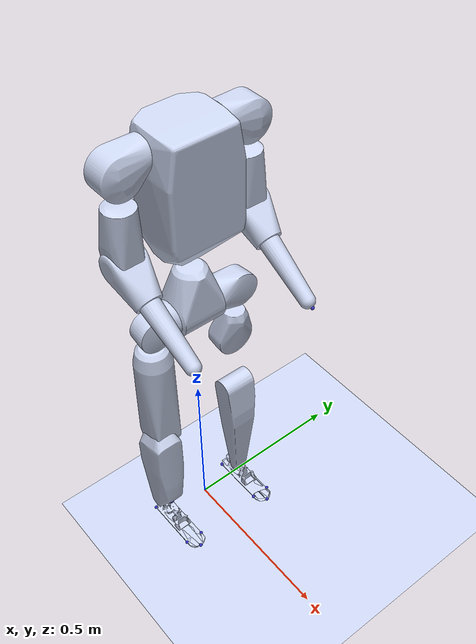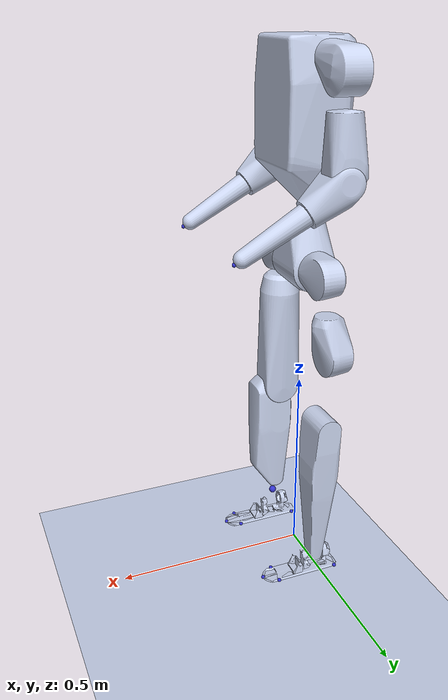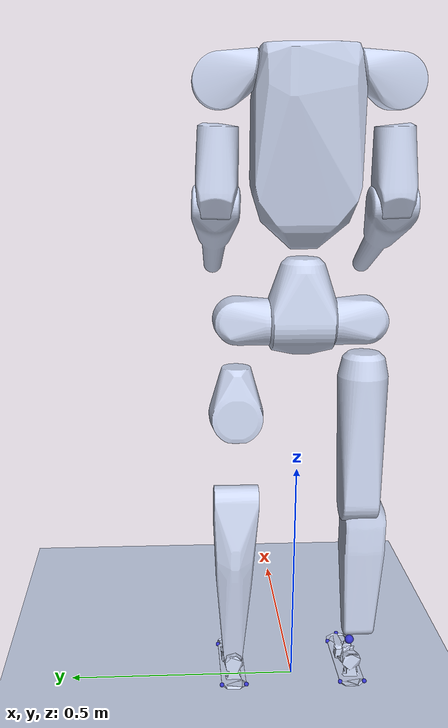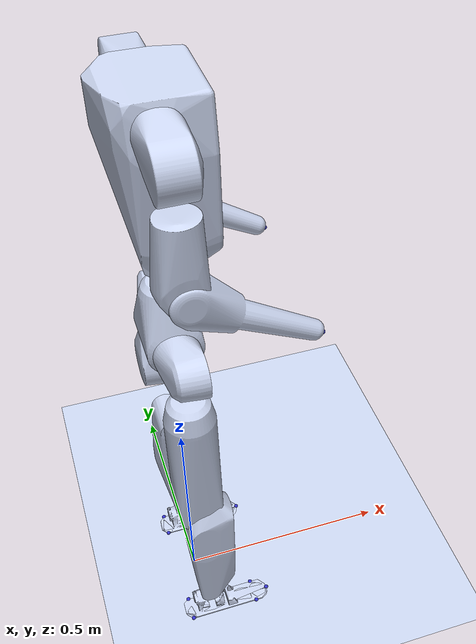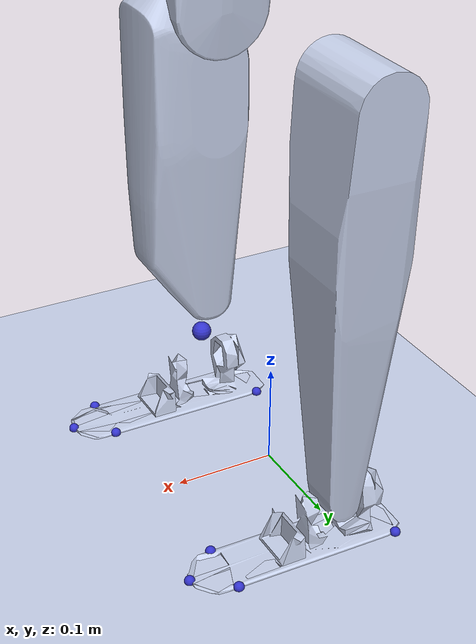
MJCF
<?xml version='1.0' encoding='utf-8'?>
<mujoco model="E2_23dof">
  <compiler angle="radian" meshdir="." autolimits="true" balanceinertia="true" />
  <default>
    <joint damping="0.001" armature="0.03" frictionloss="0.1" />
    <geom rgba="0.78 0.82 0.92 1" />
  </default>
  <asset>
    <texture name="ground_texture" type="2d" builtin="checker" rgb1=".2 .3 .4" rgb2=".1 .15 .2" width="512" height="512" />
    <material name="ground_material" texture="ground_texture" texrepeat="1 1" texuniform="true" reflectance="0" />
    <mesh name="base_link" file="simplified/base_link.STL" />
    <mesh name="l_leg_hip_pitch_link" file="simplified/l_leg_hip_pitch_link.STL" />
    <mesh name="l_leg_hip_yaw_link" file="simplified/l_leg_hip_yaw_link.STL" />
    <mesh name="l_leg_knee_link" file="simplified/l_leg_knee_link.STL" />
    <mesh name="l_leg_ankle_roll_link" file="simplified/l_leg_ankle_roll_link.STL" />
    <mesh name="r_leg_hip_pitch_link" file="simplified/r_leg_hip_pitch_link.STL" />
    <mesh name="r_leg_hip_yaw_link" file="simplified/r_leg_hip_yaw_link.STL" />
    <mesh name="r_leg_knee_link" file="simplified/r_leg_knee_link.STL" />
    <mesh name="r_leg_ankle_roll_link" file="simplified/r_leg_ankle_roll_link.STL" />
    <mesh name="waist_pitch_link" file="simplified/waist_pitch_link.STL" />
    <mesh name="l_arm_shoulder_pitch_link" file="simplified/l_arm_shoulder_pitch_link.STL" />
    <mesh name="l_arm_shoulder_yaw_link" file="simplified/l_arm_shoulder_yaw_link.STL" />
    <mesh name="l_arm_elbow_link" file="simplified/l_arm_elbow_link.STL" />
    <mesh name="r_arm_shoulder_pitch_link" file="simplified/r_arm_shoulder_pitch_link.STL" />
    <mesh name="r_arm_shoulder_yaw_link" file="simplified/r_arm_shoulder_yaw_link.STL" />
    <mesh name="r_arm_elbow_link" file="simplified/r_arm_elbow_link.STL" />
  </asset>
  <worldbody>
    <light directional="true" diffuse=".7 .7 .7" specular=".2 .2 .2" pos="0 0 4" dir="0 0 -1" />
    <geom name="ground" type="plane" size="0 0 1" pos="0 0 0" material="ground_material" condim="3" conaffinity="15" />
    <body name="base_link" pos="0 0 0.7595">
      <inertial pos="-0.00046609 -1.3058E-06 0.11394" mass="5.28864017" fullinertia="0.0182468 0.01506873 0.0079828 -2.1e-06 1.497e-05 9.27e-06" />
      <geom type="mesh" mesh="base_link" contype="1" conaffinity="1" group="2" name="base_link_geom" pos="0 0 0" euler="0 0 0" />
      <freejoint name="root" />
      <body name="l_leg_hip_pitch_link" pos="-0.00047114 0.06165 0.064">
        <inertial pos="0.0057148 0.064627 -2.5541E-05" mass="1.3773579" fullinertia="0.00163416 0.00114094 0.00147983 4.164e-05 -5.2e-07 -2.6e-07" />
        <geom type="mesh" mesh="l_leg_hip_pitch_link" contype="1" conaffinity="1" group="2" name="l_leg_hip_pitch_link_geom" pos="0 0 0" euler="0 0 0" />
        <joint name="l_leg_hip_pitch_joint" type="hinge" axis="0 1 0" range="-2.3562 3.1416" />
        <body name="l_leg_hip_roll_link" pos="0.004 0.070612 0.0003284">
          <inertial pos="0.012068 0.00018298 -0.046409" mass="0.26525549" fullinertia="0.00031798 0.00039374 0.00028296 7.9e-07 0.00011439 1.2e-07" />
          <joint name="l_leg_hip_roll_joint" type="hinge" axis="1 0 0" range="-0.349 2.9671" />
          <body name="l_leg_hip_yaw_link" pos="-0.004 8.7975E-05 -0.076112">
            <inertial pos="0.0015978 4.5174E-05 -0.17547" mass="3.57683738" fullinertia="0.06583596 0.06641946 0.00357311 4.16e-06 -0.0001477 3.05e-05" />
            <geom type="mesh" mesh="l_leg_hip_yaw_link" contype="1" conaffinity="1" group="2" name="l_leg_hip_yaw_link_geom" pos="0 0 0" euler="0 0 0" />
            <joint name="l_leg_hip_yaw_joint" type="hinge" axis="0 0 1" range="-4.7124 4.7124" />
            <body name="l_leg_knee_link" pos="0 -0.00099998 -0.3155">
              <inertial pos="-0.00010582 0.003327 -0.13825" mass="2.28601337" fullinertia="0.01653896 0.01597839 0.00202898 4.1e-06 -0.00062564 0.00027374" />
              <geom type="mesh" mesh="l_leg_knee_link" contype="1" conaffinity="1" group="2" name="l_leg_knee_link_geom" pos="0 0 0" euler="0 0 0" />
              <joint name="l_leg_knee_joint" type="hinge" axis="0 1 0" range="0 2.7925" />
              <body name="l_leg_ankle_pitch_link" pos="0.008 0.0025 -0.39">
                <inertial pos="0.0010073 1.1822E-05 -0.0029683" mass="0.12719236" fullinertia="1.176e-05 2.401e-05 1.965e-05 0 3.8e-07 0" />
                <joint name="l_leg_ankle_pitch_joint" type="hinge" axis="0 1 0" range="-1.0472 0.4363" />
                <body name="l_leg_ankle_roll_link" pos="0.0035 0 0">
                  <inertial pos="0.018153 2.0402E-09 -0.028716" mass="1.08809345" fullinertia="0.00037285 0.00205606 0.00212484 0 -8.271e-05 0" />
                  <geom type="mesh" mesh="l_leg_ankle_roll_link" contype="1" conaffinity="1" group="2" name="l_leg_ankle_roll_link_geom" pos="0 0 0" euler="0 0 0" />
                  <joint name="l_leg_ankle_roll_joint" type="hinge" axis="1 0 0" range="-0.3491 0.3491" />
                  <body name="l_foot_sphere_1_link" pos="-0.055 0.0275 -0.041">
                    <inertial pos="0 0 0" mass="0.001" fullinertia="1e-07 1e-07 1e-07 0 0 0" />
                    <geom type="sphere" size="0.005" rgba="0.2 0.2 0.8 1" contype="0" conaffinity="0" density="0" group="1" name="l_foot_sphere_1_link_geom" pos="0 0 0" euler="0 0 0" />
                  </body>
                  <body name="l_foot_sphere_2_link" pos="-0.055 -0.0275 -0.041">
                    <inertial pos="0 0 0" mass="0.001" fullinertia="1e-07 1e-07 1e-07 0 0 0" />
                    <geom type="sphere" size="0.005" rgba="0.2 0.2 0.8 1" contype="0" conaffinity="0" density="0" group="1" name="l_foot_sphere_2_link_geom" pos="0 0 0" euler="0 0 0" />
                  </body>
                  <body name="l_foot_sphere_3_link" pos="0.11 0.0275 -0.041">
                    <inertial pos="0 0 0" mass="0.001" fullinertia="1e-07 1e-07 1e-07 0 0 0" />
                    <geom type="sphere" size="0.005" rgba="0.2 0.2 0.8 1" contype="0" conaffinity="0" density="0" group="1" name="l_foot_sphere_3_link_geom" pos="0 0 0" euler="0 0 0" />
                  </body>
                  <body name="l_foot_sphere_4_link" pos="0.11 -0.0275 -0.041">
                    <inertial pos="0 0 0" mass="0.001" fullinertia="1e-07 1e-07 1e-07 0 0 0" />
                    <geom type="sphere" size="0.005" rgba="0.2 0.2 0.8 1" contype="0" conaffinity="0" density="0" group="1" name="l_foot_sphere_4_link_geom" pos="0 0 0" euler="0 0 0" />
                  </body>
                  <body name="l_foot_sphere_5_link" pos="0.145 0 -0.041">
                    <inertial pos="0 0 0" mass="0.001" fullinertia="1e-07 1e-07 1e-07 0 0 0" />
                    <geom type="sphere" size="0.005" rgba="0.2 0.2 0.8 1" contype="0" conaffinity="0" density="0" group="1" name="l_foot_sphere_5_link_geom" pos="0 0 0" euler="0 0 0" />
                  </body>
                </body>
              </body>
              <body name="l_leg_ankle_intermediate_1_link" pos="0.008 0.0025 -0.355">
                <inertial pos="0 0 0" mass="0.001" fullinertia="1e-07 1e-07 1e-07 0 0 0" />
                <geom type="sphere" size="0.01" rgba="0.2 0.2 0.8 1" contype="0" conaffinity="0" density="0" group="1" name="l_leg_ankle_intermediate_1_link_geom" pos="0 0 0" euler="0 0 0" />
              </body>
            </body>
          </body>
        </body>
      </body>
      <body name="r_leg_hip_pitch_link" pos="-0.00047114 -0.06175 0.064">
        <inertial pos="0.0057148 -0.064527 -2.5567E-05" mass="1.37736766" fullinertia="0.00163417 0.00114095 0.00147984 -4.163e-05 -5.2e-07 2.5e-07" />
        <geom type="mesh" mesh="r_leg_hip_pitch_link" contype="1" conaffinity="1" group="2" name="r_leg_hip_pitch_link_geom" pos="0 0 0" euler="0 0 0" />
        <joint name="r_leg_hip_pitch_joint" type="hinge" axis="0 1 0" range="-2.3562 3.1416" />
        <body name="r_leg_hip_roll_link" pos="0.004 -0.070484 0.00034008">
          <inertial pos="0.012068 -0.00021152 -0.046421" mass="0.26525429" fullinertia="0.00031798 0.00039374 0.00028296 -7.9e-07 0.00011439 -1.2e-07" />
          <joint name="r_leg_hip_roll_joint" type="hinge" axis="1 0 0" range="-2.9671 0.349" />
          <body name="r_leg_hip_yaw_link" pos="-0.004 -0.00011639 -0.076124">
            <inertial pos="0.0015979 -4.5172E-05 -0.17547" mass="3.57684117" fullinertia="0.06583607 0.06641956 0.00357311 -4.17e-06 -0.0001477 -3.05e-05" />
            <geom type="mesh" mesh="r_leg_hip_yaw_link" contype="1" conaffinity="1" group="2" name="r_leg_hip_yaw_link_geom" pos="0 0 0" euler="0 0 0" />
            <joint name="r_leg_hip_yaw_joint" type="hinge" axis="0 0 1" range="-4.7124 4.7124" />
            <body name="r_leg_knee_link" pos="0 0.00099999 -0.3155">
              <inertial pos="-0.00010522 -0.0033267 -0.13825" mass="2.28577932" fullinertia="0.01653856 0.01597796 0.00202885 -4.1e-06 -0.00062561 -0.00027375" />
              <geom type="mesh" mesh="r_leg_knee_link" contype="1" conaffinity="1" group="2" name="r_leg_knee_link_geom" pos="0 0 0" euler="0 0 0" />
              <joint name="r_leg_knee_joint" type="hinge" axis="0 1 0" range="0 2.7925" />
              <body name="r_leg_ankle_pitch_link" pos="0.008 -0.0025 -0.39">
                <inertial pos="0.0010072 -1.1812E-05 -0.0029681" mass="0.1271935" fullinertia="1.176e-05 2.401e-05 1.965e-05 0 3.8e-07 0" />
                <joint name="r_leg_ankle_pitch_joint" type="hinge" axis="0 1 0" range="-1.0472 0.4363" />
                <body name="r_leg_ankle_roll_link" pos="0.0035 0 0">
                  <inertial pos="0.018153 1.3733E-09 -0.028716" mass="1.08809345" fullinertia="0.00037285 0.00205606 0.00212484 0 -8.271e-05 0" />
                  <geom type="mesh" mesh="r_leg_ankle_roll_link" contype="1" conaffinity="1" group="2" name="r_leg_ankle_roll_link_geom" pos="0 0 0" euler="0 0 0" />
                  <joint name="r_leg_ankle_roll_joint" type="hinge" axis="1 0 0" range="-0.3491 0.3491" />
                  <body name="r_foot_sphere_1_link" pos="-0.055 0.0275 -0.041">
                    <inertial pos="0 0 0" mass="0.001" fullinertia="1e-07 1e-07 1e-07 0 0 0" />
                    <geom type="sphere" size="0.005" rgba="0.2 0.2 0.8 1" contype="0" conaffinity="0" density="0" group="1" name="r_foot_sphere_1_link_geom" pos="0 0 0" euler="0 0 0" />
                  </body>
                  <body name="r_foot_sphere_2_link" pos="-0.055 -0.0275 -0.041">
                    <inertial pos="0 0 0" mass="0.001" fullinertia="1e-07 1e-07 1e-07 0 0 0" />
                    <geom type="sphere" size="0.005" rgba="0.2 0.2 0.8 1" contype="0" conaffinity="0" density="0" group="1" name="r_foot_sphere_2_link_geom" pos="0 0 0" euler="0 0 0" />
                  </body>
                  <body name="r_foot_sphere_3_link" pos="0.11 0.0275 -0.041">
                    <inertial pos="0 0 0" mass="0.001" fullinertia="1e-07 1e-07 1e-07 0 0 0" />
                    <geom type="sphere" size="0.005" rgba="0.2 0.2 0.8 1" contype="0" conaffinity="0" density="0" group="1" name="r_foot_sphere_3_link_geom" pos="0 0 0" euler="0 0 0" />
                  </body>
                  <body name="r_foot_sphere_4_link" pos="0.11 -0.0275 -0.041">
                    <inertial pos="0 0 0" mass="0.001" fullinertia="1e-07 1e-07 1e-07 0 0 0" />
                    <geom type="sphere" size="0.005" rgba="0.2 0.2 0.8 1" contype="0" conaffinity="0" density="0" group="1" name="r_foot_sphere_4_link_geom" pos="0 0 0" euler="0 0 0" />
                  </body>
                  <body name="r_foot_sphere_5_link" pos="0.145 0 -0.041">
                    <inertial pos="0 0 0" mass="0.001" fullinertia="1e-07 1e-07 1e-07 0 0 0" />
                    <geom type="sphere" size="0.005" rgba="0.2 0.2 0.8 1" contype="0" conaffinity="0" density="0" group="1" name="r_foot_sphere_5_link_geom" pos="0 0 0" euler="0 0 0" />
                  </body>
                </body>
              </body>
              <body name="r_leg_ankle_intermediate_1_link" pos="0.008 -0.0025 -0.355">
                <inertial pos="0 0 0" mass="0.001" fullinertia="1e-07 1e-07 1e-07 0 0 0" />
                <geom type="sphere" size="0.01" rgba="0.2 0.2 0.8 1" contype="0" conaffinity="0" density="0" group="1" name="r_leg_ankle_intermediate_1_link_geom" pos="0 0 0" euler="0 0 0" />
              </body>
            </body>
          </body>
        </body>
      </body>
      <body name="waist_yaw_link" pos="-0.00015545 0 0.1987">
        <inertial pos="0.0094985 -0.002821 0.0075679" mass="0.59018663" fullinertia="0.00030261 0.00037821 0.00048887 6.74e-06 2.021e-05 2.292e-05" />
        <joint name="waist_yaw_joint" type="hinge" axis="0 0 1" range="-4.7124 4.7124" />
        <body name="waist_roll_link" pos="0.0024843 0 0.0273">
          <inertial pos="-0.0021186 -0.0022521 1.6044E-07" mass="0.28793127" fullinertia="0.00010388 3.441e-05 0.00011646 -8e-08 0 0" />
          <joint name="waist_roll_joint" type="hinge" axis="1 0 0" range="-0.5235 0.5235" />
          <body name="waist_pitch_link" pos="-0.002 4.3903E-05 0">
            <inertial pos="0.0094096 0.00018056 0.21088" mass="10.27021425" fullinertia="0.1489514 0.12388776 0.05227676 -0.00015352 0.00144613 0.00015166" />
            <geom type="mesh" mesh="waist_pitch_link" contype="1" conaffinity="1" group="2" name="waist_pitch_link_geom" pos="0 0 0" euler="0 0 0" />
            <joint name="waist_pitch_joint" type="hinge" axis="0 1 0" range="-0.5235 0.5235" />
            <body name="l_arm_shoulder_pitch_link" pos="0 0.093744 0.31863" euler="0.17453 0 0">
              <inertial pos="0.0020861 0.065027 -0.025743" mass="1.62441562" fullinertia="0.00230664 0.00168123 0.00182534 2.43e-05 -1.656e-05 -0.00026119" />
              <geom type="mesh" mesh="l_arm_shoulder_pitch_link" contype="1" conaffinity="1" group="2" name="l_arm_shoulder_pitch_link_geom" pos="0 0 0" euler="0 0 0" />
              <joint name="l_arm_shoulder_pitch_joint" type="hinge" axis="0 1 0" range="-3.1416 3.1416" />
              <body name="l_arm_shoulder_roll_link" pos="0.0016805 0.069094 -0.029289" euler="-0.17453 0 0">
                <inertial pos="-0.0058081 0.0026038 -0.032793" mass="0.55306301" fullinertia="0.00110419 0.00137016 0.00089266 4.95e-06 -0.00011466 -5.33e-06" />
                <joint name="l_arm_shoulder_roll_joint" type="hinge" axis="1 0 0" range="-0.2618 2.7925" />
                <body name="l_arm_shoulder_yaw_link" pos="-0.00041494 0.0031926 -0.081712">
                  <inertial pos="-0.0007002 0.003668 -0.085936" mass="1.60901054" fullinertia="0.00604459 0.00598632 0.00125199 -3.38e-06 2.178e-05 -3.72e-06" />
                  <geom type="mesh" mesh="l_arm_shoulder_yaw_link" contype="1" conaffinity="1" group="2" name="l_arm_shoulder_yaw_link_geom" pos="0 0 0" euler="0 0 0" />
                  <joint name="l_arm_shoulder_yaw_joint" type="hinge" axis="0 0 1" range="-3.4907 3.4907" />
                  <body name="l_arm_elbow_link" pos="0.002579 0.0080593 -0.14844">
                    <inertial pos="0.096434 -0.0036868 -0.071498" mass="0.72445956" fullinertia="0.00205858 0.00607616 0.00476261 0.00018695 0.00248819 -0.00012787" />
                    <geom type="mesh" mesh="l_arm_elbow_link" contype="1" conaffinity="1" group="2" name="l_arm_elbow_link_geom" pos="0 0 0" euler="0 0 0" />
                    <joint name="l_arm_elbow_joint" type="hinge" axis="0 1 0" range="-1.3963 1.1345" />
                    <body name="l_hand_sphere_link" pos="0.249 -0.008 -0.159">
                      <inertial pos="0 0 0" mass="0.001" fullinertia="1e-07 1e-07 1e-07 0 0 0" />
                      <geom type="sphere" size="0.005" rgba="0.2 0.2 0.8 1" contype="0" conaffinity="0" density="0" group="1" name="l_hand_sphere_link_geom" pos="0 0 0" euler="0 0 0" />
                    </body>
                  </body>
                </body>
              </body>
            </body>
            <body name="r_arm_shoulder_pitch_link" pos="0 -0.093832 0.31863" euler="-0.17453 0 0">
              <inertial pos="0.0020862 -0.065027 -0.025744" mass="1.62440409" fullinertia="0.00230661 0.0016812 0.00182533 -2.43e-05 -1.657e-05 0.00026117" />
              <geom type="mesh" mesh="r_arm_shoulder_pitch_link" contype="1" conaffinity="1" group="2" name="r_arm_shoulder_pitch_link_geom" pos="0 0 0" euler="0 0 0" />
              <joint name="r_arm_shoulder_pitch_joint" type="hinge" axis="0 1 0" range="-3.1416 3.1416" />
              <body name="r_arm_shoulder_roll_link" pos="0.00028649 -0.069101 -0.028713" euler="0.17453 0 0">
                <inertial pos="-0.004415 -0.0026968 -0.033362" mass="0.55306279" fullinertia="0.00110419 0.00137015 0.00089264 -4.98e-06 -0.00011464 5.33e-06" />
                <joint name="r_arm_shoulder_roll_joint" type="hinge" axis="1 0 0" range="-2.7925 0.2618" />
                <body name="r_arm_shoulder_yaw_link" pos="0.00097907 -0.0032851 -0.082281">
                  <inertial pos="-0.00069901 -0.0036688 -0.085932" mass="1.60901747" fullinertia="0.00604457 0.00598654 0.00125223 3.54e-06 2.169e-05 3.9e-06" />
                  <geom type="mesh" mesh="r_arm_shoulder_yaw_link" contype="1" conaffinity="1" group="2" name="r_arm_shoulder_yaw_link_geom" pos="0 0 0" euler="0 0 0" />
                  <joint name="r_arm_shoulder_yaw_joint" type="hinge" axis="0 0 1" range="-3.4907 3.4907" />
                  <body name="r_arm_elbow_link" pos="0.0014956 -0.0080617 -0.14845">
                    <inertial pos="0.097515 0.0036903 -0.071484" mass="0.72448255" fullinertia="0.00205863 0.00607637 0.00476283 -0.00018694 0.00248827 0.00012787" />
                    <geom type="mesh" mesh="r_arm_elbow_link" contype="1" conaffinity="1" group="2" name="r_arm_elbow_link_geom" pos="0 0 0" euler="0 0 0" />
                    <joint name="r_arm_elbow_joint" type="hinge" axis="0 1 0" range="-1.3963 1.1345" />
                    <body name="r_hand_sphere_link" pos="0.25 0.008 -0.159">
                      <inertial pos="0 0 0" mass="0.001" fullinertia="1e-07 1e-07 1e-07 0 0 0" />
                      <geom type="sphere" size="0.005" rgba="0.2 0.2 0.8 1" contype="0" conaffinity="0" density="0" group="1" name="r_hand_sphere_link_geom" pos="0 0 0" euler="0 0 0" />
                    </body>
                  </body>
                </body>
              </body>
            </body>
          </body>
        </body>
      </body>
    </body>
  </worldbody>
</mujoco>
